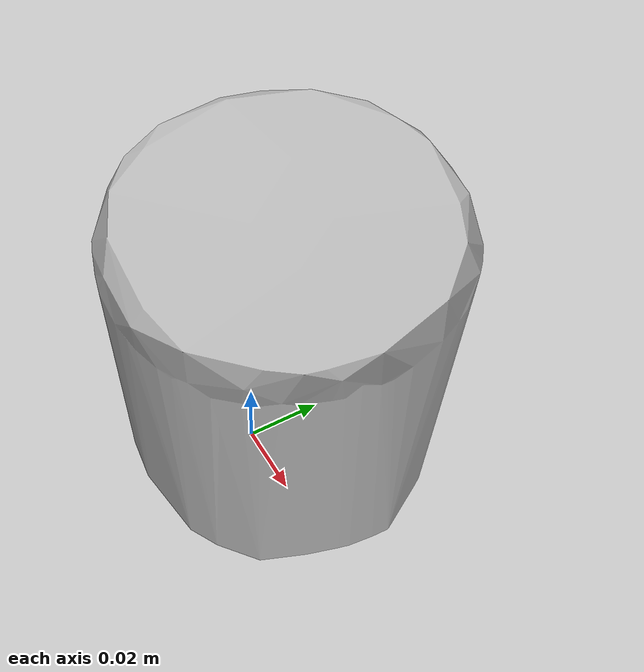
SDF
<?xml version='1.0'?>
<sdf version="1.4">
  <model name="haagen_dazs_cookie_dough">
    <static>false</static>
    <link name="link">
      <inertial>
        <pose>0.009167223551875802 0.005890063134727028 0.057431929507393044 -3.131973723580226 -0.002263655946118573 -2.91991131821713</pose>
        <mass>0.06164745413836462</mass>
        <inertia>
          <ixx>7.779257442617299e-05</ixx>
          <ixy>-8.611604653089339e-21</ixy>
          <ixz>3.8697504640529535e-23</ixz>
          <iyy>7.731488260322061e-05</iyy>
          <iyz>-2.395903897302756e-22</iyz>
          <izz>6.415115606089477e-05</izz>
        </inertia>
      </inertial>
      <collision name="collision">
        <geometry>
          <mesh>
            <!-- Use a downsampled mesh for collisions -->
            <uri>model:///haagen_dazs_cookie_dough/haagen_dazs_cookie_dough_250_collision.obj</uri>
	        </mesh>
        </geometry>
        <surface>
      </surface>
      </collision>
      <visual name="visual">
        <geometry>
          <mesh>
            <uri>model:///haagen_dazs_cookie_dough/optimized_tsdf_texture_mapped_mesh.obj</uri>
	        </mesh>
        </geometry>
        <material>
          <script>
            <uri>model:///haagen_dazs_cookie_dough/haagen_dazs_cookie_dough.material</uri>
            <name>haagen_dazs_cookie_dough</name>
          </script>
        </material>
      </visual>
    </link>
  </model>
</sdf>
